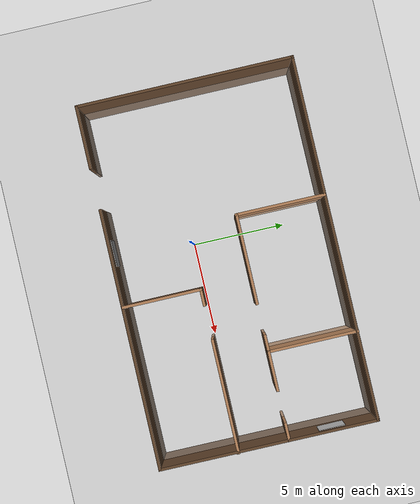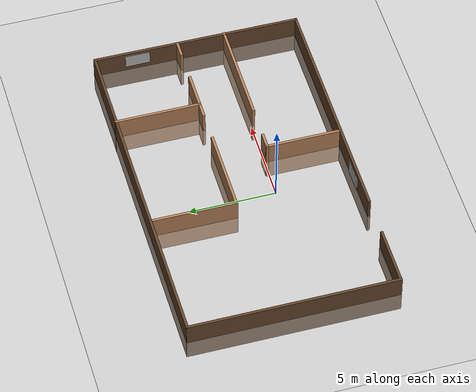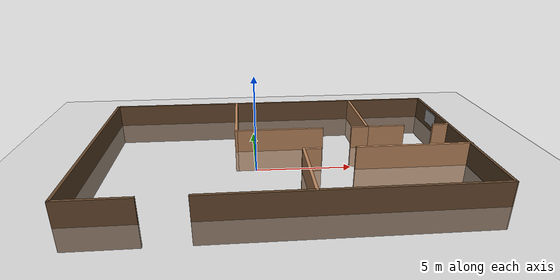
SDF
<sdf version="1.9">
 <world name="hospital_simulation_v4">
  <physics name="1ms" type="ignored">
   <max_step_size>0.001</max_step_size>
   <real_time_factor>1</real_time_factor>
   <real_time_update_rate>1000</real_time_update_rate>
  </physics>
  <scene><ambient>0.4 0.4 0.4 1</ambient><background>0.7 0.7 0.7 1</background><shadows>true</shadows></scene>
  <gravity>0 0 -9.8</gravity>
  <magnetic_field>6e-06 2.3e-05 -4.2e-05</magnetic_field>
  <atmosphere type="adiabatic"/>
  <model name="ground_plane">
   <static>true</static>
   <link name="link">
    <collision name="collision">
     <geometry><plane><normal>0 0 1</normal><size>100 100</size></plane></geometry>
    </collision>
    <visual name="visual">
     <geometry><plane><normal>0 0 1</normal><size>100 100</size></plane></geometry>
     <material><ambient>0.8 0.8 0.8 1</ambient><diffuse>0.8 0.8 0.8 1</diffuse></material>
    </visual>
    <inertial>
     <mass>1</mass>
     <inertia><ixx>1</ixx><ixy>0</ixy><ixz>0</ixz><iyy>1</iyy><iyz>0</iyz><izz>1</izz></inertia>
    </inertial>
   </link>
  </model>
  <model name="Final_Hospital_world">
   <static>true</static>
   <pose>1.39096 1.50027 0 0 -0 0</pose>
   <link name="Wall_16">
    <pose>-0.002761 5.925 0 0 -0 0.002622</pose>
    <collision name="Wall_16_Collision"><geometry><box><size>20.05 0.15 2.5</size></box></geometry></collision>
    <visual name="Wall_16_Visual">
     <geometry><box><size>20.05 0.15 2.5</size></box></geometry>
     <material><ambient>0.39 0.27 0.17 1</ambient><diffuse>0.39 0.27 0.17 1</diffuse></material>
    </visual>
    <inertial>
     <mass>1</mass>
     <inertia><ixx>1</ixx><ixy>0</ixy><ixz>0</ixz><iyy>1</iyy><iyz>0</iyz><izz>1</izz></inertia>
    </inertial>
   </link>
   <link name="Wall_18">
    <pose>-9.95385 -0.026087 0 0 0 -1.5708</pose>
    <collision name="Wall_18_Collision"><geometry><box><size>12 0.15 2.5</size></box></geometry></collision>
    <visual name="Wall_18_Visual">
     <geometry><box><size>12 0.15 2.5</size></box></geometry>
     <material><ambient>0.39 0.27 0.17 1</ambient><diffuse>0.39 0.27 0.17 1</diffuse></material>
    </visual>
    <inertial>
     <mass>1</mass>
     <inertia><ixx>1</ixx><ixy>0</ixy><ixz>0</ixz><iyy>1</iyy><iyz>0</iyz><izz>1</izz></inertia>
    </inertial>
   </link>
   <link name="Wall_20">
    <pose>-8.27885 -5.95109 0 0 -0 0</pose>
    <collision name="Wall_20_Collision"><geometry><box><size>3.5 0.15 2.5</size></box></geometry></collision>
    <visual name="Wall_20_Visual">
     <geometry><box><size>3.5 0.15 2.5</size></box></geometry>
     <material><ambient>0.39 0.27 0.17 1</ambient><diffuse>0.39 0.27 0.17 1</diffuse></material>
    </visual>
    <inertial>
     <mass>1</mass>
     <inertia><ixx>1</ixx><ixy>0</ixy><ixz>0</ixz><iyy>1</iyy><iyz>0</iyz><izz>1</izz></inertia>
    </inertial>
   </link>
   <link name="Wall_32">
    <pose>9.92224 -0 0 0 0 -1.57518</pose>
    <collision name="Wall_32_Collision"><geometry><box><size>12.05 0.15 2.5</size></box></geometry></collision>
    <visual name="Wall_32_Visual">
     <geometry><box><size>12.05 0.15 2.5</size></box></geometry>
     <material><ambient>0.39 0.27 0.17 1</ambient><diffuse>0.39 0.27 0.17 1</diffuse></material>
    </visual>
    <inertial>
     <mass>1</mass>
     <inertia><ixx>1</ixx><ixy>0</ixy><ixz>0</ixz><iyy>1</iyy><iyz>0</iyz><izz>1</izz></inertia>
    </inertial>
   </link>
   <link name="Wall_34">
    <pose>2.79615 -5.95109 0 0 -0 0</pose>
    <collision name="Wall_34_Collision"><geometry><box><size>14.25 0.15 2.5</size></box></geometry></collision>
    <visual name="Wall_34_Visual">
     <geometry><box><size>14.25 0.15 2.5</size></box></geometry>
     <material><ambient>0.39 0.27 0.17 1</ambient><diffuse>0.39 0.27 0.17 1</diffuse></material>
    </visual>
    <inertial>
     <mass>1</mass>
     <inertia><ixx>1</ixx><ixy>0</ixy><ixz>0</ixz><iyy>1</iyy><iyz>0</iyz><izz>1</izz></inertia>
    </inertial>
   </link>
   <link name="Wall_48">
    <pose>5.09822 3.52591 0 0 0 -1.5708</pose>
    <collision name="Wall_48_Collision"><geometry><box><size>5 0.15 2.5</size></box></geometry></collision>
    <visual name="Wall_48_Visual">
     <geometry><box><size>5 0.15 2.5</size></box></geometry>
     <material><ambient>0.71 0.51 0.35 1</ambient><diffuse>0.71 0.51 0.35 1</diffuse></material>
    </visual>
    <inertial>
     <mass>1</mass>
     <inertia><ixx>1</ixx><ixy>0</ixy><ixz>0</ixz><iyy>1</iyy><iyz>0</iyz><izz>1</izz></inertia>
    </inertial>
   </link>
   <link name="Wall_53">
    <pose>-2.39091 3.48476 0 0 0 -1.5744</pose>
    <collision name="Wall_53_Collision"><geometry><box><size>4.98 0.15 2.5</size></box></geometry></collision>
    <visual name="Wall_53_Visual">
     <geometry><box><size>4.98 0.15 2.5</size></box></geometry>
     <material><ambient>0.71 0.51 0.35 1</ambient><diffuse>0.71 0.51 0.35 1</diffuse></material>
    </visual>
    <inertial>
     <mass>1</mass>
     <inertia><ixx>1</ixx><ixy>0</ixy><ixz>0</ixz><iyy>1</iyy><iyz>0</iyz><izz>1</izz></inertia>
    </inertial>
   </link>
   <link name="Wall_66">
    <pose>0.034087 1.07949 0 0 -0 0</pose>
    <collision name="Wall_66_Collision"><geometry><box><size>5 0.15 2.5</size></box></geometry></collision>
    <visual name="Wall_66_Visual">
     <geometry><box><size>5 0.15 2.5</size></box></geometry>
     <material><ambient>0.71 0.51 0.35 1</ambient><diffuse>0.71 0.51 0.35 1</diffuse></material>
    </visual>
    <inertial>
     <mass>1</mass>
     <inertia><ixx>1</ixx><ixy>0</ixy><ixz>0</ixz><iyy>1</iyy><iyz>0</iyz><izz>1</izz></inertia>
    </inertial>
   </link>
   <link name="Wall_70">
    <pose>6.14822 1.10091 0 0 -0 0</pose>
    <collision name="Wall_70_Collision"><geometry><box><size>2.25 0.15 2.5</size></box></geometry></collision>
    <visual name="Wall_70_Visual">
     <geometry><box><size>2.25 0.15 2.5</size></box></geometry>
     <material><ambient>0.71 0.51 0.35 1</ambient><diffuse>0.71 0.51 0.35 1</diffuse></material>
    </visual>
    <inertial>
     <mass>1</mass>
     <inertia><ixx>1</ixx><ixy>0</ixy><ixz>0</ixz><iyy>1</iyy><iyz>0</iyz><izz>1</izz></inertia>
    </inertial>
   </link>
   <link name="Wall_73">
    <pose>1.05404 -3.80504 0 0 0 -1.5708</pose>
    <collision name="Wall_73_Collision"><geometry><box><size>4.4 0.15 2.5</size></box></geometry></collision>
    <visual name="Wall_73_Visual">
     <geometry><box><size>4.4 0.15 2.5</size></box></geometry>
     <material><ambient>0.71 0.51 0.35 1</ambient><diffuse>0.71 0.51 0.35 1</diffuse></material>
    </visual>
    <inertial>
     <mass>1</mass>
     <inertia><ixx>1</ixx><ixy>0</ixy><ixz>0</ixz><iyy>1</iyy><iyz>0</iyz><izz>1</izz></inertia>
    </inertial>
   </link>
   <link name="Wall_77">
    <pose>6.90404 -1.68004 0 0 -0 0</pose>
    <collision name="Wall_77_Collision"><geometry><box><size>6.25 0.15 2.5</size></box></geometry></collision>
    <visual name="Wall_77_Visual">
     <geometry><box><size>6.25 0.15 2.5</size></box></geometry>
     <material><ambient>0.71 0.51 0.35 1</ambient><diffuse>0.71 0.51 0.35 1</diffuse></material>
    </visual>
    <inertial>
     <mass>1</mass>
     <inertia><ixx>1</ixx><ixy>0</ixy><ixz>0</ixz><iyy>1</iyy><iyz>0</iyz><izz>1</izz></inertia>
    </inertial>
   </link>
   <link name="Wall_79">
    <pose>1.47904 -1.68004 0 0 -0 0</pose>
    <collision name="Wall_79_Collision"><geometry><box><size>1 0.15 2.5</size></box></geometry></collision>
    <visual name="Wall_79_Visual">
     <geometry><box><size>1 0.15 2.5</size></box></geometry>
     <material><ambient>0.71 0.51 0.35 1</ambient><diffuse>0.71 0.51 0.35 1</diffuse></material>
    </visual>
    <inertial>
     <mass>1</mass>
     <inertia><ixx>1</ixx><ixy>0</ixy><ixz>0</ixz><iyy>1</iyy><iyz>0</iyz><izz>1</izz></inertia>
    </inertial>
   </link>
   <link name="Wall_82">
    <pose>4.67322 1.10091 0 0 -0 3.14159</pose>
    <collision name="Wall_82_Collision"><geometry><box><size>1 0.15 2.5</size></box></geometry></collision>
    <visual name="Wall_82_Visual">
     <geometry><box><size>1 0.15 2.5</size></box></geometry>
     <material><ambient>0.71 0.51 0.35 1</ambient><diffuse>0.71 0.51 0.35 1</diffuse></material>
    </visual>
    <inertial>
     <mass>1</mass>
     <inertia><ixx>1</ixx><ixy>0</ixy><ixz>0</ixz><iyy>1</iyy><iyz>0</iyz><izz>1</izz></inertia>
    </inertial>
   </link>
   <link name="Wall_88">
    <pose>9.47322 1.10091 0 0 -0 0</pose>
    <collision name="Wall_88_Collision"><geometry><box><size>1 0.15 2.5</size></box></geometry></collision>
    <visual name="Wall_88_Visual">
     <geometry><box><size>1 0.15 2.5</size></box></geometry>
     <material><ambient>0.71 0.51 0.35 1</ambient><diffuse>0.71 0.51 0.35 1</diffuse></material>
    </visual>
    <inertial>
     <mass>1</mass>
     <inertia><ixx>1</ixx><ixy>0</ixy><ixz>0</ixz><iyy>1</iyy><iyz>0</iyz><izz>1</izz></inertia>
    </inertial>
   </link>
  </model>
  <model name="tv_65in_emissive">
   <static>true</static>
   <link name="link">
    <visual name="visual">
     <geometry><box><size>0.05 1.45 0.83</size></box></geometry>
     <material>
      <script>
       <uri>https://fuel.gazebosim.org/1.0/makerspet/models/tv_65in_emissive/1/files/material/script</uri>
       <uri>https://fuel.gazebosim.org/1.0/makerspet/models/tv_65in_emissive/1/files/material/textures</uri>
       <name>Custom/tv_emissive</name>
      </script>
     </material>
    </visual>
    <inertial>
     <mass>1</mass>
     <inertia><ixx>1</ixx><ixy>0</ixy><ixz>0</ixz><iyy>1</iyy><iyz>0</iyz><izz>1</izz></inertia>
    </inertial>
   </link>
   <pose>-0.492688 -4.28383 0.693857 0 -0 1.57795</pose>
  </model>
  <model name="tv_65in_emissive_1">
   <static>true</static>
   <link name="link">
    <visual name="visual">
     <geometry><box><size>0.05 1.45 0.83</size></box></geometry>
     <material>
      <script>
       <uri>https://fuel.gazebosim.org/1.0/makerspet/models/tv_65in_emissive/1/files/material/script</uri>
       <uri>https://fuel.gazebosim.org/1.0/makerspet/models/tv_65in_emissive/1/files/material/textures</uri>
       <name>Custom/tv_emissive</name>
      </script>
     </material>
    </visual>
    <inertial>
     <mass>1</mass>
     <inertia><ixx>1</ixx><ixy>0</ixy><ixz>0</ixz><iyy>1</iyy><iyz>0</iyz><izz>1</izz></inertia>
    </inertial>
   </link>
   <pose>11.2381 4.98776 0.693857 0 -0 -3.1356</pose>
  </model>
  <light name="sun" type="directional">
   <pose>0 0 10 0 -0 0</pose>
   <intensity>1</intensity>
   <direction>-0.5 0.1 -0.9</direction>
   <diffuse>0.8 0.8 0.8 1</diffuse>
   <specular>0.2 0.2 0.2 1</specular>
   <attenuation><range>10</range><linear>1</linear><constant>1</constant><quadratic>0</quadratic></attenuation>
   <spot><inner_angle>0</inner_angle><outer_angle>0</outer_angle><falloff>0</falloff></spot>
  </light>
 </world>
</sdf>
